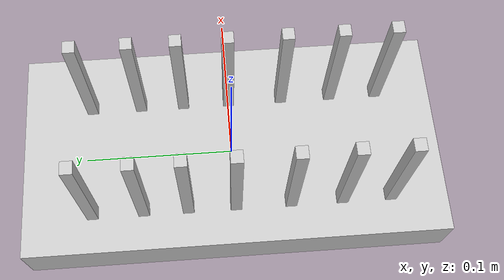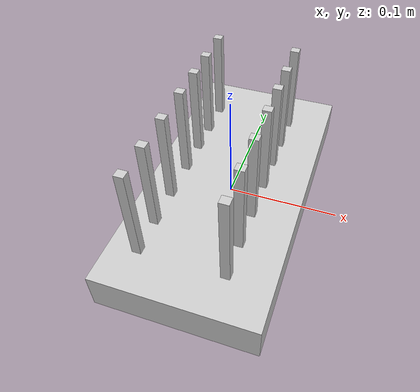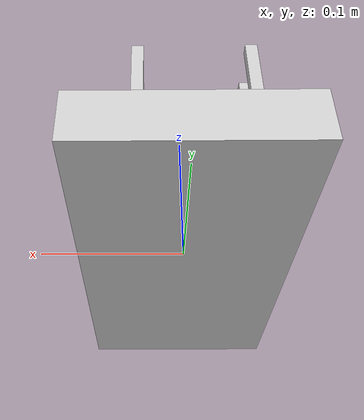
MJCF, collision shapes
<mujoco model="simple_rack">
  <asset>
  <material name="simple_rack" reflectance="0.5" texrepeat="1 1" texuniform="false" />
  <mesh file="visual/simple_rack_vis.msh" name="simple_rack_vis" scale="0.07 0.07 0.07" /></asset>
  <worldbody>
    <body>
      <body name="object">
      <geom solimp="0.998 0.998 0.001" solref="0.001 1" density="100" friction="0.95 0.3 0.1" type="mesh" mesh="simple_rack_vis" conaffinity="0" contype="0" group="1" material="simple_rack" /><geom solimp="0.998 0.998 0.001" solref="0.001 1" density="100" friction="0.95 0.3 0.1" type="box" pos="-0.04382 0.00000 0.05903" quat="0.00000 0.70711 0.70711 0.00000" size="0.00362 0.00393 0.04425" group="0" rgba="0.8 0.8 0.8 0.3" /><geom solimp="0.998 0.998 0.001" solref="0.001 1" density="100" friction="0.95 0.3 0.1" type="box" pos="0.03113 0.00000 0.05903" quat="0.00000 0.70711 0.70711 0.00000" size="0.00362 0.00393 0.04425" group="0" rgba="0.8 0.8 0.8 0.3" /><geom solimp="0.998 0.998 0.001" solref="0.001 1" density="100" friction="0.95 0.3 0.1" type="box" pos="0.03113 -0.03584 0.05903" quat="0.00000 0.70711 0.70711 0.00000" size="0.00362 0.00393 0.04425" group="0" rgba="0.8 0.8 0.8 0.3" /><geom solimp="0.998 0.998 0.001" solref="0.001 1" density="100" friction="0.95 0.3 0.1" type="box" pos="-0.04382 -0.03584 0.05903" quat="0.00000 0.70711 0.70711 0.00000" size="0.00362 0.00393 0.04425" group="0" rgba="0.8 0.8 0.8 0.3" /><geom solimp="0.998 0.998 0.001" solref="0.001 1" density="100" friction="0.95 0.3 0.1" type="box" pos="-0.04382 -0.06942 0.05903" quat="0.00000 0.70711 0.70711 0.00000" size="0.00362 0.00393 0.04425" group="0" rgba="0.8 0.8 0.8 0.3" /><geom solimp="0.998 0.998 0.001" solref="0.001 1" density="100" friction="0.95 0.3 0.1" type="box" pos="0.03113 -0.06942 0.05903" quat="0.00000 0.70711 0.70711 0.00000" size="0.00362 0.00393 0.04425" group="0" rgba="0.8 0.8 0.8 0.3" /><geom solimp="0.998 0.998 0.001" solref="0.001 1" density="100" friction="0.95 0.3 0.1" type="box" pos="0.03113 -0.10116 0.05903" quat="0.00000 0.70711 0.70711 0.00000" size="0.00362 0.00393 0.04425" group="0" rgba="0.8 0.8 0.8 0.3" /><geom solimp="0.998 0.998 0.001" solref="0.001 1" density="100" friction="0.95 0.3 0.1" type="box" pos="-0.04382 -0.10116 0.05903" quat="0.00000 -0.70711 0.70711 -0.00000" size="0.00362 0.00393 0.04425" group="0" rgba="0.8 0.8 0.8 0.3" /><geom solimp="0.998 0.998 0.001" solref="0.001 1" density="100" friction="0.95 0.3 0.1" type="box" pos="-0.04382 0.03092 0.05903" quat="0.00000 0.70711 0.70711 0.00000" size="0.00362 0.00393 0.04425" group="0" rgba="0.8 0.8 0.8 0.3" /><geom solimp="0.998 0.998 0.001" solref="0.001 1" density="100" friction="0.95 0.3 0.1" type="box" pos="0.03113 0.03092 0.05903" quat="0.00000 0.70711 0.70711 0.00000" size="0.00362 0.00393 0.04425" group="0" rgba="0.8 0.8 0.8 0.3" /><geom solimp="0.998 0.998 0.001" solref="0.001 1" density="100" friction="0.95 0.3 0.1" type="box" pos="0.03113 0.05980 0.05903" quat="0.00000 0.70711 0.70711 0.00000" size="0.00362 0.00393 0.04425" group="0" rgba="0.8 0.8 0.8 0.3" /><geom solimp="0.998 0.998 0.001" solref="0.001 1" density="100" friction="0.95 0.3 0.1" type="box" pos="-0.04382 0.05980 0.05903" quat="0.00000 0.70711 0.70711 0.00000" size="0.00362 0.00393 0.04425" group="0" rgba="0.8 0.8 0.8 0.3" /><geom solimp="0.998 0.998 0.001" solref="0.001 1" density="100" friction="0.95 0.3 0.1" type="box" pos="-0.04382 0.09297 0.05903" quat="0.00000 0.70711 0.70711 0.00000" size="0.00362 0.00393 0.04425" group="0" rgba="0.8 0.8 0.8 0.3" /><geom solimp="0.998 0.998 0.001" solref="0.001 1" density="100" friction="0.95 0.3 0.1" type="box" pos="0.03113 0.09297 0.05903" quat="0.00000 0.70711 0.70711 0.00000" size="0.00362 0.00393 0.04425" group="0" rgba="0.8 0.8 0.8 0.3" /><geom solimp="0.998 0.998 0.001" solref="0.001 1" density="100" friction="0.95 0.3 0.1" type="box" pos="-0.00000 0.00000 -0.00000" quat="0.50000 -0.50000 0.50000 0.50000" size="0.01734 0.07000 0.13904" group="0" rgba="0.8 0.8 0.8 0.3" /></body>
      <site rgba="0 0 0 0" size="0.005" pos="0 0 -0.06" name="bottom_site" />
      <site rgba="0 0 0 0" size="0.005" pos="0 0 0.04" name="top_site" />
      <site rgba="0 0 0 0" size="0.005" pos="0.025 0.025 0" name="horizontal_radius_site" />
    </body>
  </worldbody>
</mujoco>
